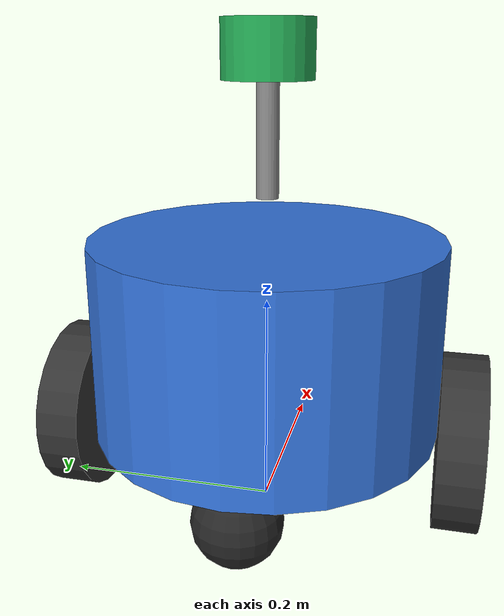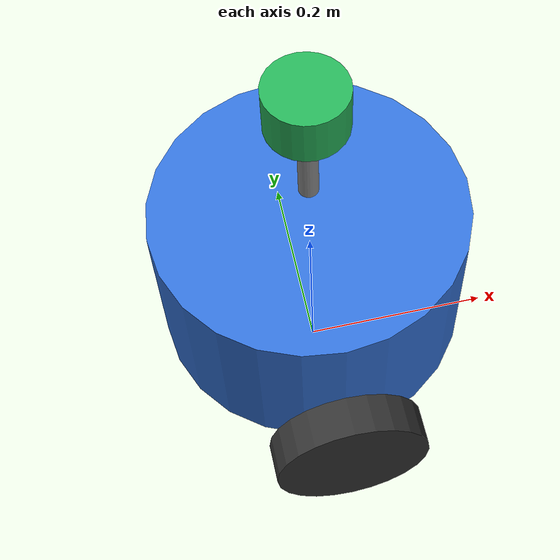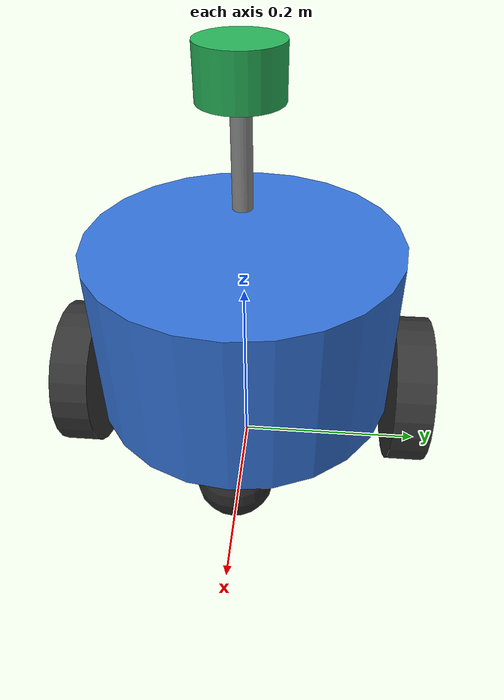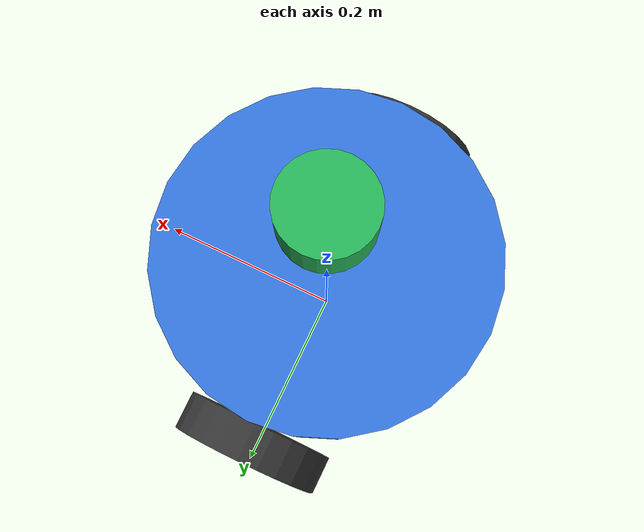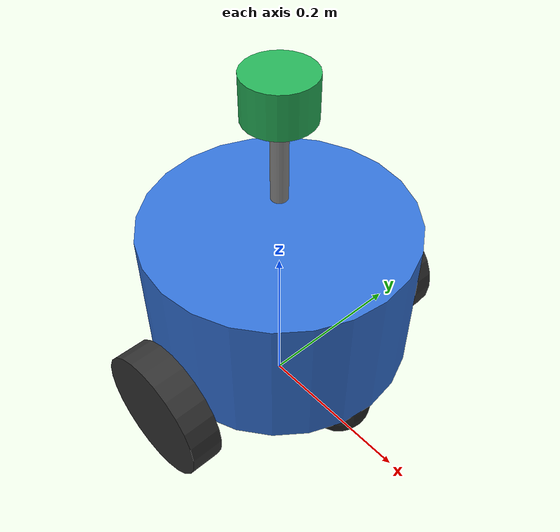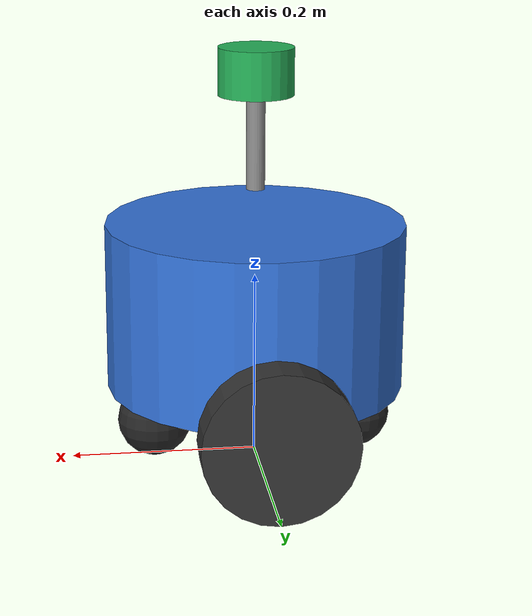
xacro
<?xml version="1.0"?>
<robot xmlns:xacro="http://www.ros.org/wiki/xacro" name="airobot">
	<!-- 包含所需的 xacro 文件 -->
	<xacro:include filename="$(find airobot_simulation)/urdf/actuator/caster.urdf.xacro"/>  <!-- 从动轮宏定义 -->
	<xacro:include filename="$(find airobot_simulation)/urdf/actuator/wheel.urdf.xacro"/>  <!-- 车轮宏定义 -->
	<xacro:include filename="$(find airobot_simulation)/urdf/airobot/base.urdf.xacro"/>    <!-- 基座宏定义 -->
	<xacro:include filename="$(find airobot_simulation)/urdf/sensor/camera.urdf.xacro"/>   <!-- 摄像头宏定义 -->
	<xacro:include filename="$(find airobot_simulation)/urdf/sensor/imu.urdf.xacro"/>      <!-- IMU宏定义 -->
	<xacro:include filename="$(find airobot_simulation)/urdf/sensor/laser.urdf.xacro"/>    <!-- 激光雷达宏定义 -->
	<xacro:include filename="$(find airobot_simulation)/plugins/diff_drive.urdf.xacro"/>    <!-- 差速驱动插件 -->
	<xacro:include filename="$(find airobot_simulation)/plugins/laser.urdf.xacro"/>         <!-- 激光雷达插件 -->
	<xacro:include filename="$(find airobot_simulation)/plugins/imu.urdf.xacro"/>           <!-- IMU惯性测量单元插件 -->
	<xacro:include filename="$(find airobot_simulation)/plugins/camera.urdf.xacro"/>        <!-- 相机传感器插件(支持RGB/深度) -->

	<!-- 计算差速驱动参数 -->
	<!-- 轮间距: 左右轮 y 坐标之差的绝对值 -->
	<!-- left_wheel y=0.18, right_wheel y=-0.18, separation = 0.36 -->
	<xacro:property name="wheel_separation" value="0.36"/>  <!-- 左右轮中心间距(米) -->
	<!-- 轮直径: wheel radius * 2 = 0.08 * 2 = 0.16 -->
	<xacro:property name="wheel_diameter" value="0.16"/>   <!-- 轮子直径(米) -->

	<!-- 机器人主宏定义 -->
	<xacro:macro name="airobot" params="base_length base_radius left_wheel_xyz right_wheel_xyz rear_caster_xyz front_caster_xyz camera_xyz camera_type imu_xyz laser_type laser_xyz laser_angle_min laser_angle_max">
		<!-- 基座足印链接(虚拟链接,用于确定机器人底部位置) -->
		<link name="base_footprint"/>

		<!-- 创建基座链接 -->
		<xacro:base name="base_link" length="${base_length}" radius="${base_radius}"/>

		<!-- 基座足印到基座的固定关节 -->
		<joint name="base_footprint_joint" type="fixed">
			<parent link="base_footprint"/>
			<child link="base_link"/>
			<origin xyz="0 0 ${0.08 + base_length / 2.0}" rpy="0 0 0"/>
		</joint>

		<!-- 左轮(驱动轮) -->
		<xacro:wheel name="left_wheel" parent="base_link" xyz="${left_wheel_xyz}"/>
		<!-- 右轮(驱动轮) -->
		<xacro:wheel name="right_wheel" parent="base_link" xyz="${right_wheel_xyz}"/>
		<!-- 后从动轮 -->
		<xacro:caster name="rear_caster" parent="base_link" xyz="${rear_caster_xyz}"/>
		<!-- 前从动轮 -->
		<xacro:caster name="front_caster" parent="base_link" xyz="${front_caster_xyz}"/>

		<!-- 摄像头传感器 (使用camera_sensor宏，通过camera_type切换RGB/深度相机) -->
		<xacro:camera name="camera" parent="base_link" xyz="${camera_xyz}"/>

		<!-- 相机传感器插件 (通过camera_type参数切换: rgb=普通相机, depth=深度相机) -->
		<xacro:camera_sensor
			name="camera"
			parent="base_link"
			camera_type="${camera_type}"
			topic_name="camera"
			update_rate="30"
			xyz="${camera_xyz}"/>

		<!-- IMU惯性测量单元 -->
		<xacro:imu name="imu" parent="base_link" xyz="${imu_xyz}"/>
		<!-- 激光雷达传感器 -->
		<xacro:laser name="laser" parent="base_link" xyz="${laser_xyz}"/>

		<!-- 根据激光雷达类型设置不同的话题名称 -->
		<xacro:property name="laser_topic" value="${'livox/lidar' if laser_type == '3d' else 'scan'}"/>

		<!-- 激光雷达传感器插件 -->
		<!-- 参数: name(传感器名称), parent(父链接), laser_type(激光雷达类型), topic_name(发布话题名), update_rate(更新频率Hz), xyz(安装位置) -->
		<xacro:laser_sensor
			name="laser"
			parent="base_link"
			laser_type="${laser_type}"
			topic_name="${laser_topic}"
			update_rate="10"
			visualize="false"
			ray_angle_min="${laser_angle_min}"
			ray_angle_max="${laser_angle_max}"
			xyz="${laser_xyz}"/>

		<!-- IMU惯性测量单元传感器插件 -->
		<!-- 参数: name(传感器名称), parent(父链接), topic_name(发布话题名), update_rate(更新频率Hz), xyz(安装位置), gyro/accel_noise_x/y/z(噪声标准差) -->
		<xacro:imu_sensor
			name="imu"
			parent="base_link"
			topic_name="imu"
			update_rate="100"
			xyz="${imu_xyz}"
			gyro_noise_x="2e-4" gyro_noise_y="2e-4" gyro_noise_z="2e-4"
			accel_noise_x="2e-4" accel_noise_y="2e-4" accel_noise_z="2e-4"/>

		<!-- 差速驱动插件 -->
		<!-- 参数: name(插件名称), parent(父链接), left_wheel/right_wheel(轮子关节名), wheel_separation(轮间距), wheel_diameter(轮直径), update_rate(更新频率Hz) -->
		<xacro:diff_drive
			name="diff_drive"
			parent="base_link"
			left_wheel="left_wheel_joint"
			right_wheel="right_wheel_joint"
			wheel_separation="${wheel_separation}"
			wheel_diameter="${wheel_diameter}"
			update_rate="50"
			base_frame_id="base_footprint"/>
	</xacro:macro>

	<!-- 默认参数配置(可在launch文件中覆盖) -->
	<xacro:arg name="base_length" default="0.18"/>           <!-- 基座高度(米) -->
	<xacro:arg name="base_radius" default="0.16"/>          <!-- 基座半径(米) -->
	<xacro:arg name="left_wheel_xyz" default="0.0 0.18 -0.09"/>    <!-- 左轮安装位置(x y z,单位:米) -->
	<xacro:arg name="right_wheel_xyz" default="0.0 -0.18 -0.09"/>   <!-- 右轮安装位置(x y z,单位:米) -->
	<xacro:arg name="rear_caster_xyz" default="-0.11 0.0 -0.13"/>   <!-- 后从动轮安装位置(x y z,单位:米) -->
	<xacro:arg name="front_caster_xyz" default="0.11 0.0 -0.13"/>   <!-- 前从动轮安装位置(x y z,单位:米) -->
	<xacro:arg name="camera_xyz" default="0.12 0.0 0.06"/>    <!-- 摄像头安装位置(x y z,单位:米) -->
	<xacro:arg name="camera_type" default="depth"/>           <!-- 相机类型: rgb=普通相机, depth=深度相机 -->
	<xacro:arg name="imu_xyz" default="0.0 0.0 0.03"/>       <!-- IMU安装位置(x y z,单位:米) -->
	<xacro:arg name="laser_type" default="2d"/>           <!-- 激光雷达类型: 2d=2D激光雷达, 3d=Livox 3D激光雷达 -->
	<xacro:arg name="laser_xyz" default="0.0 0.0 0.125"/>   <!-- 激光雷达安装位置(x y z,单位:米) -->
	<!-- 激光雷达扫描角度参数 -->
	<!-- 可选值: -->
	<!-- 360度: laser_angle_min:=-3.14159, laser_angle_max:=3.14159 -->
	<!-- 270度: laser_angle_min:=-2.3562, laser_angle_max:=2.3562 -->
	<!-- 180度: laser_angle_min:=-1.5708, laser_angle_max:=1.5708 -->
	<xacro:arg name="laser_angle_min" default="-3.14159"/>   <!-- 激光雷达最小扫描角度(弧度) -->
	<xacro:arg name="laser_angle_max" default="3.14159"/>    <!-- 激光雷达最大扫描角度(弧度) -->

	<xacro:airobot
			base_length="$(arg base_length)"
			base_radius="$(arg base_radius)"
			left_wheel_xyz="$(arg left_wheel_xyz)"
			right_wheel_xyz="$(arg right_wheel_xyz)"
			rear_caster_xyz="$(arg rear_caster_xyz)"
			front_caster_xyz="$(arg front_caster_xyz)"
			camera_xyz="$(arg camera_xyz)"
			camera_type="$(arg camera_type)"
			imu_xyz="$(arg imu_xyz)"
			laser_type="$(arg laser_type)"
			laser_xyz="$(arg laser_xyz)"
			laser_angle_min="$(arg laser_angle_min)"
			laser_angle_max="$(arg laser_angle_max)"/>
</robot>

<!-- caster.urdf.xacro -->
<robot xmlns:xacro="http://www.ros.org/wiki/xacro" name="caster_macro">
	<!-- 从动轮(万向轮)执行器宏定义 -->
	<!-- 参数: name(从动轮名称), parent(父链接), xyz(安装位置) -->
	<xacro:macro name="caster" params="name parent xyz">
		<!-- 从动轮参数 -->
		<xacro:property name="caster_radius" value="0.04"/>      <!-- 从动轮半径(米) -->
		<xacro:property name="caster_mass" value="0.3"/>         <!-- 从动轮质量(千克) -->
		<xacro:property name="caster_inertia" value="${0.4 * caster_mass * caster_radius * caster_radius}"/>  <!-- 惯性矩 -->

		<link name="${name}_link">
			<visual>
				<origin xyz="0 0 0" rpy="0 0 0"/>
				<geometry>
					<sphere radius="${caster_radius}"/>
				</geometry>
				<material name="black">
					<color rgba="0.15 0.15 0.15 1.0"/>
				</material>
			</visual>

			<collision>
				<origin xyz="0 0 0" rpy="0 0 0"/>
				<geometry>
					<sphere radius="${caster_radius}"/>
				</geometry>
			</collision>

			<inertial>
				<origin xyz="0 0 0" rpy="0 0 0"/>
				<mass value="${caster_mass}"/>
				<inertia ixx="${caster_inertia}" ixy="0.0" ixz="0.0" iyy="${caster_inertia}" iyz="0.0" izz="${caster_inertia}"/>
			</inertial>
		</link>

		<joint name="${name}_joint" type="fixed">
			<parent link="${parent}"/>
			<child link="${name}_link"/>
			<origin xyz="${xyz}" rpy="0 0 0"/>
		</joint>

		<gazebo reference="${name}_link">
			<material>Gazebo/Black</material>
			<mu1>0.5</mu1>
			<mu2>0.5</mu2>
			<slip1>0.05</slip1>
			<slip2>0.05</slip2>
		</gazebo>
	</xacro:macro>
</robot>

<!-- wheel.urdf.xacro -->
<robot xmlns:xacro="http://www.ros.org/wiki/xacro" name="wheel_macro">
	<!-- 车轮执行器宏定义 -->
	<!-- 参数: name(车轮名称), parent(父链接), xyz(安装位置) -->
	<xacro:macro name="wheel" params="name parent xyz">
		<!-- 车轮参数 -->
		<xacro:property name="wheel_radius" value="0.08"/>      <!-- 车轮半径(米) -->
		<xacro:property name="wheel_width" value="0.04"/>      <!-- 车轮宽度(米) -->
		<xacro:property name="wheel_mass" value="0.8"/>         <!-- 车轮质量(千克) -->
		<!-- 车轮惯性矩计算 -->
		<xacro:property name="wheel_ixx" value="${wheel_mass * (3.0 * wheel_radius * wheel_radius + wheel_width * wheel_width) / 12.0}"/>
		<xacro:property name="wheel_izz" value="${0.5 * wheel_mass * wheel_radius * wheel_radius}"/>

		<link name="${name}_link">
			<visual>
				<origin xyz="0 0 0" rpy="1.57079632679 0 0"/>
				<geometry>
					<cylinder radius="${wheel_radius}" length="${wheel_width}"/>
				</geometry>
				<material name="dark_gray">
					<color rgba="0.2 0.2 0.2 1.0"/>
				</material>
			</visual>

			<collision>
				<origin xyz="0 0 0" rpy="1.57079632679 0 0"/>
				<geometry>
					<cylinder radius="${wheel_radius}" length="${wheel_width}"/>
				</geometry>
			</collision>

			<inertial>
				<origin xyz="0 0 0" rpy="0 0 0"/>
				<mass value="${wheel_mass}"/>
				<inertia ixx="${wheel_ixx}" ixy="0.0" ixz="0.0" iyy="${wheel_izz}" iyz="0.0" izz="${wheel_ixx}"/>
			</inertial>
		</link>

		<joint name="${name}_joint" type="continuous">
			<parent link="${parent}"/>
			<child link="${name}_link"/>
			<origin xyz="${xyz}" rpy="0 0 0"/>
			<axis xyz="0 1 0"/>
			<dynamics damping="0.1" friction="0.1"/>
		</joint>

		<gazebo reference="${name}_link">
			<material>Gazebo/DarkGrey</material>
			<mu1>1.0</mu1>
			<mu2>1.0</mu2>
		</gazebo>
	</xacro:macro>
</robot>

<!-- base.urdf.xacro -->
<robot xmlns:xacro="http://www.ros.org/wiki/xacro" name="base_macro">
	<!-- 机器人基座宏定义 -->
	<!-- 参数: name(基座名称), length(基座长度/高度), radius(基座半径) -->
	<xacro:macro name="base" params="name length radius">
		<!-- 基座物理参数 -->
		<xacro:property name="base_mass" value="8.0"/>    <!-- 基座质量(千克) -->
		<!-- 基座惯性矩计算 -->
		<xacro:property name="base_ixx" value="${base_mass * (3.0 * radius * radius + length * length) / 12.0}"/>
		<xacro:property name="base_izz" value="${0.5 * base_mass * radius * radius}"/>

		<link name="${name}">
			<visual>
				<origin xyz="0 0 0" rpy="0 0 0"/>
				<geometry>
					<cylinder radius="${radius}" length="${length}"/>
				</geometry>
				<material name="blue">
					<color rgba="0.2 0.45 0.85 1.0"/>
				</material>
			</visual>

			<collision>
				<origin xyz="0 0 0" rpy="0 0 0"/>
				<geometry>
					<cylinder radius="${radius}" length="${length}"/>
				</geometry>
			</collision>

			<inertial>
				<origin xyz="0 0 0" rpy="0 0 0"/>
				<mass value="${base_mass}"/>
				<inertia ixx="${base_ixx}" ixy="0.0" ixz="0.0" iyy="${base_ixx}" iyz="0.0" izz="${base_izz}"/>
			</inertial>
		</link>
	</xacro:macro>
</robot>

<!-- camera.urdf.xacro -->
<robot xmlns:xacro="http://www.ros.org/wiki/xacro" name="camera_macro">
	<!-- 摄像头传感器宏定义 -->
	<!-- 参数: name(传感器名称), parent(父链接), xyz(安装位置) -->
	<xacro:macro name="camera" params="name parent xyz">
		<!-- 摄像头参数 -->
		<xacro:property name="camera_mass" value="0.15"/>  <!-- 摄像头质量(千克) -->
		<xacro:property name="camera_x" value="0.06"/>    <!-- 摄像头X尺寸(米) -->
		<xacro:property name="camera_y" value="0.03"/>    <!-- 摄像头Y尺寸(米) -->
		<xacro:property name="camera_z" value="0.03"/>     <!-- 摄像头Z尺寸(米) -->

		<link name="${name}_link">
			<visual>
				<origin xyz="0 0 0" rpy="0 0 0"/>
				<geometry>
					<box size="${camera_x} ${camera_y} ${camera_z}"/>
				</geometry>
				<material name="silver">
					<color rgba="0.75 0.75 0.78 1.0"/>
				</material>
			</visual>

			<collision>
				<origin xyz="0 0 0" rpy="0 0 0"/>
				<geometry>
					<box size="${camera_x} ${camera_y} ${camera_z}"/>
				</geometry>
			</collision>

			<inertial>
				<origin xyz="0 0 0" rpy="0 0 0"/>
				<mass value="${camera_mass}"/>
				<inertia ixx="1.5e-4" ixy="0.0" ixz="0.0" iyy="1.5e-4" iyz="0.0" izz="1.5e-4"/>
			</inertial>
		</link>

		<joint name="${name}_joint" type="fixed">
			<parent link="${parent}"/>
			<child link="${name}_link"/>
			<origin xyz="${xyz}" rpy="0 0 0"/>
		</joint>
	</xacro:macro>
</robot>

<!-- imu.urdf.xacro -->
<robot xmlns:xacro="http://www.ros.org/wiki/xacro" name="imu_macro">
	<!-- IMU(惯性测量单元)传感器宏定义 -->
	<!-- 参数: name(传感器名称), parent(父链接), xyz(安装位置) -->
	<xacro:macro name="imu" params="name parent xyz">
		<!-- IMU参数 -->
		<xacro:property name="imu_mass" value="0.05"/>      <!-- IMU质量(千克) -->
		<xacro:property name="imu_size" value="0.025"/>    <!-- IMU尺寸(米,立方体边长) -->

		<link name="${name}_link">
			<visual>
				<origin xyz="0 0 0" rpy="0 0 0"/>
				<geometry>
					<box size="${imu_size} ${imu_size} ${imu_size}"/>
				</geometry>
				<material name="orange">
					<color rgba="0.95 0.55 0.15 1.0"/>
				</material>
			</visual>

			<collision>
				<origin xyz="0 0 0" rpy="0 0 0"/>
				<geometry>
					<box size="${imu_size} ${imu_size} ${imu_size}"/>
				</geometry>
			</collision>

			<inertial>
				<origin xyz="0 0 0" rpy="0 0 0"/>
				<mass value="${imu_mass}"/>
				<inertia ixx="1.0e-5" ixy="0.0" ixz="0.0" iyy="1.0e-5" iyz="0.0" izz="1.0e-5"/>
			</inertial>
		</link>

		<joint name="${name}_joint" type="fixed">
			<parent link="${parent}"/>
			<child link="${name}_link"/>
			<origin xyz="${xyz}" rpy="0 0 0"/>
		</joint>
	</xacro:macro>
</robot>

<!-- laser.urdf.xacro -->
<robot xmlns:xacro="http://www.ros.org/wiki/xacro" name="laser_macro">
	<!-- 激光雷达传感器宏定义 -->
	<!-- 参数: name(传感器名称), parent(父链接), xyz(安装位置) -->
	<xacro:macro name="laser" params="name parent xyz">
		<!-- 支架参数 -->
		<xacro:property name="pole_radius" value="0.01"/>   <!-- 支架半径(米) -->
		<xacro:property name="pole_height" value="0.10"/>  <!-- 支架高度(米) -->
		<xacro:property name="pole_mass" value="0.08"/>    <!-- 支架质量(千克) -->
		<!-- 激光雷达参数 -->
		<xacro:property name="laser_radius" value="0.04"/>  <!-- 激光雷达半径(米) -->
		<xacro:property name="laser_height" value="0.05"/>  <!-- 激光雷达高度(米) -->
		<xacro:property name="laser_mass" value="0.2"/>     <!-- 激光雷达质量(千克) -->

		<link name="${name}_mount_link">
			<visual>
				<origin xyz="0 0 ${pole_height / 2.0}" rpy="0 0 0"/>
				<geometry>
					<cylinder radius="${pole_radius}" length="${pole_height}"/>
				</geometry>
				<material name="gray">
					<color rgba="0.55 0.55 0.55 1.0"/>
				</material>
			</visual>

			<collision>
				<origin xyz="0 0 ${pole_height / 2.0}" rpy="0 0 0"/>
				<geometry>
					<cylinder radius="${pole_radius}" length="${pole_height}"/>
				</geometry>
			</collision>

			<inertial>
				<origin xyz="0 0 ${pole_height / 2.0}" rpy="0 0 0"/>
				<mass value="${pole_mass}"/>
				<inertia ixx="8.0e-5" ixy="0.0" ixz="0.0" iyy="8.0e-5" iyz="0.0" izz="4.0e-6"/>
			</inertial>
		</link>

		<link name="${name}_link">
			<visual>
				<origin xyz="0 0 0" rpy="0 0 0"/>
				<geometry>
					<cylinder radius="${laser_radius}" length="${laser_height}"/>
				</geometry>
				<material name="green">
					<color rgba="0.15 0.7 0.35 1.0"/>
				</material>
			</visual>

			<collision>
				<origin xyz="0 0 0" rpy="0 0 0"/>
				<geometry>
					<cylinder radius="${laser_radius}" length="${laser_height}"/>
				</geometry>
			</collision>

			<inertial>
				<origin xyz="0 0 0" rpy="0 0 0"/>
				<mass value="${laser_mass}"/>
				<inertia ixx="8.0e-5" ixy="0.0" ixz="0.0" iyy="8.0e-5" iyz="0.0" izz="8.0e-5"/>
			</inertial>
		</link>

		<joint name="${name}_mount_joint" type="fixed">
			<parent link="${parent}"/>
			<child link="${name}_mount_link"/>
			<origin xyz="${xyz}" rpy="0 0 0"/>
		</joint>

		<joint name="${name}_joint" type="fixed">
			<parent link="${name}_mount_link"/>
			<child link="${name}_link"/>
			<origin xyz="0 0 ${pole_height + laser_height / 2.0}" rpy="0 0 0"/>
		</joint>
	</xacro:macro>
</robot>
